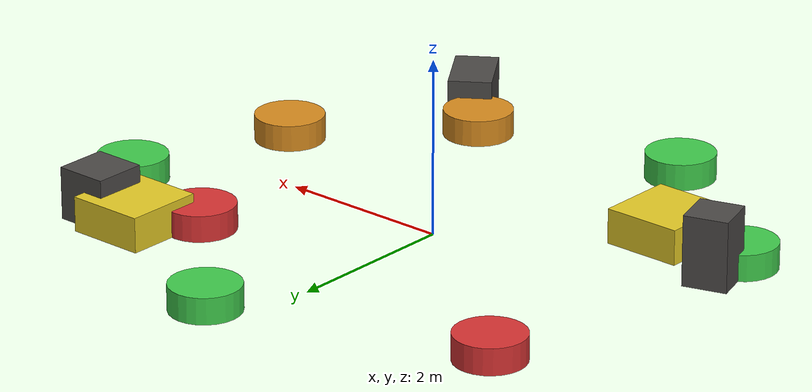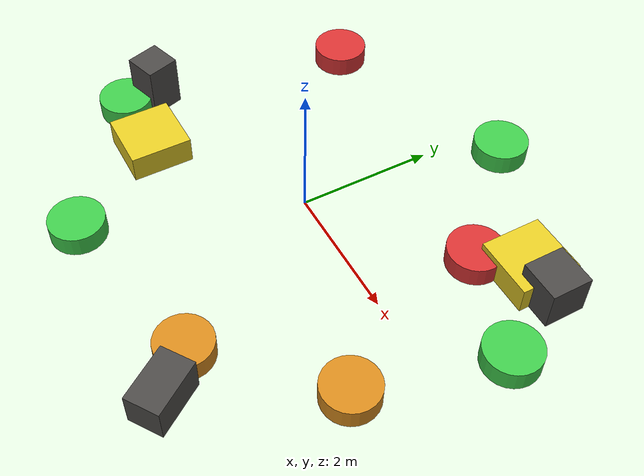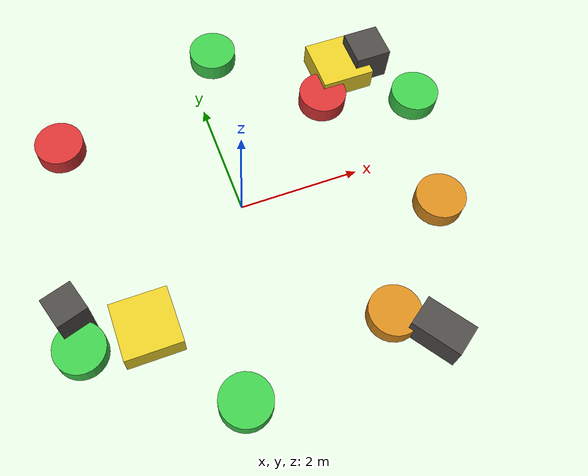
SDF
<sdf version="1.6">
 <world name="lunar_field">
  <plugin name="gazebo_ros_state" filename="libgazebo_ros_state.so">
   <ros><namespace>/gazebo</namespace></ros>
   <update_rate>30.0</update_rate>
  </plugin>
  <scene>
   <ambient>0.62 0.62 0.66 1</ambient>
   <background>0.05 0.06 0.10 1</background>
   <shadows>false</shadows>
  </scene>
  <model name="lunar_ground">
   <static>true</static>
   <link name="link">
    <pose>0 0 -1.05 0 0 0</pose>
    <collision name="collision">
     <geometry><box><size>200 200 0.1</size></box></geometry>
     <surface>
      <contact><ode><kp>1000000.0</kp><kd>100.0</kd></ode></contact>
      <friction><ode><mu>1.5</mu><mu2>1.5</mu2></ode></friction>
     </surface>
    </collision>
   </link>
  </model>
  <physics name="default_physics" default="true" type="ode">
   <max_step_size>0.001</max_step_size>
   <real_time_update_rate>1000</real_time_update_rate>
   <real_time_factor>1.0</real_time_factor>
  </physics>
  <light name="sun_light" type="directional">
   <pose>5 5 10 0 0.7 0</pose>
   <diffuse>0.55 0.55 0.60 1</diffuse>
   <specular>0.03 0.03 0.03 1</specular>
   <direction>-0.4 -0.35 -0.8</direction>
  </light>
  <model name="obstacle_0">
   <static>true</static>
   <link name="link">
    <collision name="collision"><geometry><box><size>0.6 0.6 0.6</size></box></geometry></collision>
    <visual name="visual">
     <geometry><box><size>0.6 0.6 0.6</size></box></geometry>
     <material>
      <ambient>0.22 0.21 0.20 1</ambient>
      <diffuse>0.30 0.29 0.28 1</diffuse>
      <specular>0.02 0.02 0.02 1</specular>
     </material>
    </visual>
   </link>
   <pose>3.0 2.0 0.3 0 0 0</pose>
  </model>
  <model name="obstacle_1">
   <static>true</static>
   <link name="link">
    <collision name="collision"><geometry><box><size>0.5 0.5 0.8</size></box></geometry></collision>
    <visual name="visual">
     <geometry><box><size>0.5 0.5 0.8</size></box></geometry>
     <material>
      <ambient>0.22 0.21 0.20 1</ambient>
      <diffuse>0.30 0.29 0.28 1</diffuse>
      <specular>0.02 0.02 0.02 1</specular>
     </material>
    </visual>
   </link>
   <pose>-3.0 -1.0 0.4 0 0 0.3</pose>
  </model>
  <model name="obstacle_2">
   <static>true</static>
   <link name="link">
    <collision name="collision"><geometry><box><size>0.5 0.8 0.5</size></box></geometry></collision>
    <visual name="visual">
     <geometry><box><size>0.5 0.8 0.5</size></box></geometry>
     <material>
      <ambient>0.22 0.21 0.20 1</ambient>
      <diffuse>0.30 0.29 0.28 1</diffuse>
      <specular>0.02 0.02 0.02 1</specular>
     </material>
    </visual>
   </link>
   <pose>2.0 -3.0 0.25 0 0 0.6</pose>
  </model>
  <model name="demo_camera">
   <pose>0 -7 7 0 0.785 1.5708</pose>
   <static>true</static>
   <link name="camera_link">
    <sensor type="camera" name="camera1">
     <update_rate>5</update_rate>
     <visualize>false</visualize>
     <camera name="head">
      <horizontal_fov>1.1</horizontal_fov>
      <image><width>960</width><height>540</height><format>R8G8B8</format></image>
      <clip><near>0.1</near><far>100</far></clip>
     </camera>
     <plugin name="camera_controller" filename="libgazebo_ros_camera.so">
      <ros><namespace>demo_cam</namespace></ros>
      <frame_name>camera_link</frame_name>
     </plugin>
    </sensor>
   </link>
  </model>
  <model name="resource_0">
   <static>true</static>
   <pose>2.0 1.5 0.15 0 0 0</pose>
   <link name="link">
    <visual name="visual">
     <geometry><cylinder><radius>0.4</radius><length>0.3</length></cylinder></geometry>
     <material><ambient>0.85 0.20 0.20 1</ambient><diffuse>0.85 0.20 0.20 1</diffuse></material>
    </visual>
   </link>
  </model>
  <model name="resource_1">
   <static>true</static>
   <pose>-2.5 2.0 0.15 0 0 0</pose>
   <link name="link">
    <visual name="visual">
     <geometry><cylinder><radius>0.4</radius><length>0.3</length></cylinder></geometry>
     <material><ambient>0.85 0.20 0.20 1</ambient><diffuse>0.85 0.20 0.20 1</diffuse></material>
    </visual>
   </link>
  </model>
  <model name="resource_2">
   <static>true</static>
   <pose>1.5 -2.5 0.15 0 0 0</pose>
   <link name="link">
    <visual name="visual">
     <geometry><cylinder><radius>0.4</radius><length>0.3</length></cylinder></geometry>
     <material><ambient>0.85 0.55 0.12 1</ambient><diffuse>0.85 0.55 0.12 1</diffuse></material>
    </visual>
   </link>
  </model>
  <model name="resource_3">
   <static>true</static>
   <pose>3.0 -1.0 0.15 0 0 0</pose>
   <link name="link">
    <visual name="visual">
     <geometry><cylinder><radius>0.4</radius><length>0.3</length></cylinder></geometry>
     <material><ambient>0.85 0.55 0.12 1</ambient><diffuse>0.85 0.55 0.12 1</diffuse></material>
    </visual>
   </link>
  </model>
  <model name="resource_4">
   <static>true</static>
   <pose>-3.0 -1.5 0.15 0 0 0</pose>
   <link name="link">
    <visual name="visual">
     <geometry><cylinder><radius>0.4</radius><length>0.3</length></cylinder></geometry>
     <material><ambient>0.25 0.80 0.30 1</ambient><diffuse>0.25 0.80 0.30 1</diffuse></material>
    </visual>
   </link>
  </model>
  <model name="resource_5">
   <static>true</static>
   <pose>0.5 3.0 0.15 0 0 0</pose>
   <link name="link">
    <visual name="visual">
     <geometry><cylinder><radius>0.4</radius><length>0.3</length></cylinder></geometry>
     <material><ambient>0.25 0.80 0.30 1</ambient><diffuse>0.25 0.80 0.30 1</diffuse></material>
    </visual>
   </link>
  </model>
  <model name="resource_6">
   <static>true</static>
   <pose>-1.0 -3.0 0.15 0 0 0</pose>
   <link name="link">
    <visual name="visual">
     <geometry><cylinder><radius>0.4</radius><length>0.3</length></cylinder></geometry>
     <material><ambient>0.25 0.80 0.30 1</ambient><diffuse>0.25 0.80 0.30 1</diffuse></material>
    </visual>
   </link>
  </model>
  <model name="resource_7">
   <static>true</static>
   <pose>3.5 1.0 0.15 0 0 0</pose>
   <link name="link">
    <visual name="visual">
     <geometry><cylinder><radius>0.4</radius><length>0.3</length></cylinder></geometry>
     <material><ambient>0.25 0.80 0.30 1</ambient><diffuse>0.25 0.80 0.30 1</diffuse></material>
    </visual>
   </link>
  </model>
  <model name="depot_0">
   <static>true</static>
   <pose>-2.0 -1.5 0.2 0 0 0</pose>
   <link name="link">
    <visual name="visual">
     <geometry><box><size>0.9 0.9 0.4</size></box></geometry>
     <material><ambient>0.90 0.80 0.15 1</ambient><diffuse>0.90 0.80 0.15 1</diffuse></material>
    </visual>
   </link>
  </model>
  <model name="depot_1">
   <static>true</static>
   <pose>2.5 2.0 0.2 0 0 0</pose>
   <link name="link">
    <visual name="visual">
     <geometry><box><size>0.9 0.9 0.4</size></box></geometry>
     <material><ambient>0.90 0.80 0.15 1</ambient><diffuse>0.90 0.80 0.15 1</diffuse></material>
    </visual>
   </link>
  </model>
 </world>
</sdf>
